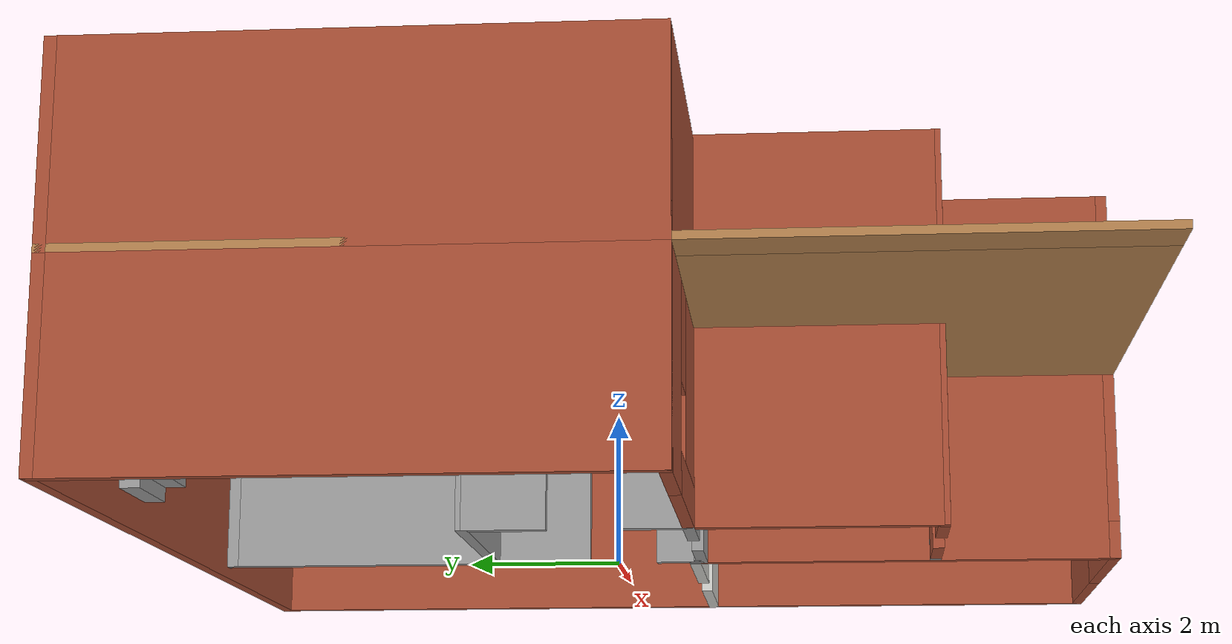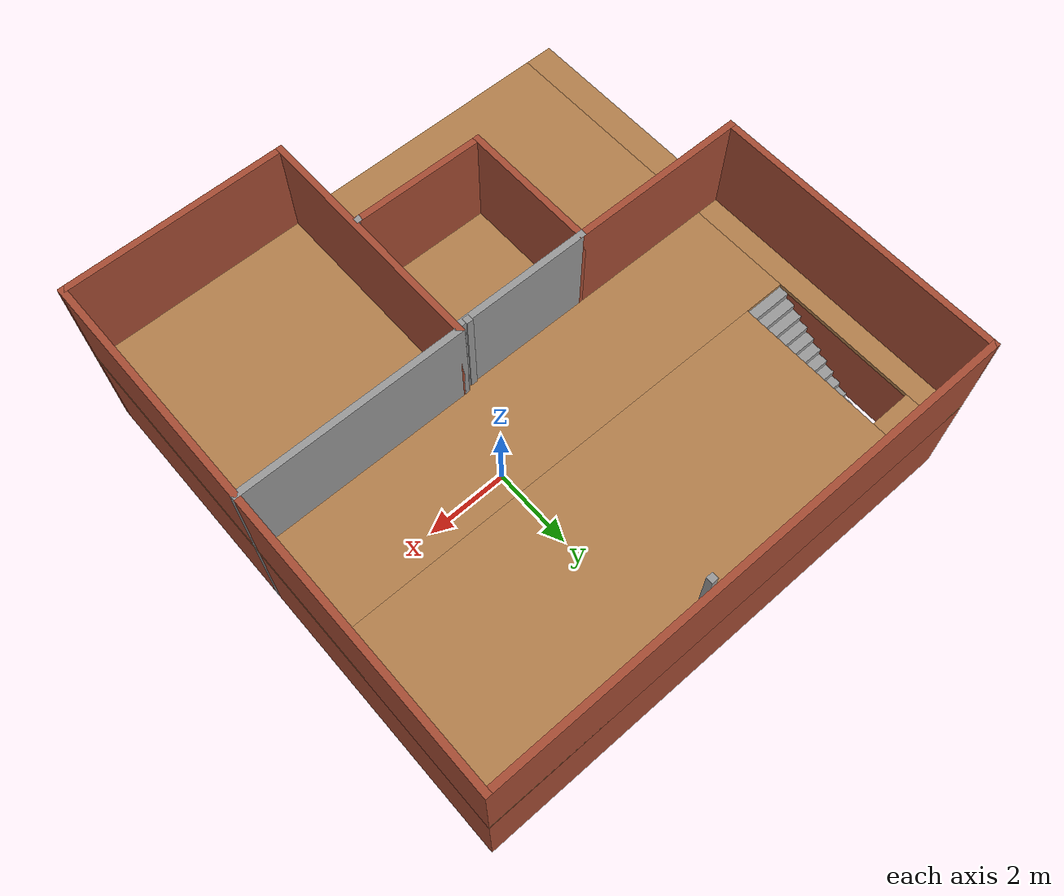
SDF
<?xml version='1.0'?>
<sdf version='1.6'>
  <model name='Random_building'>
    <pose frame=''>-1.00549 -0.452201 0 0 -0 0</pose>
    <link name='Floor_0'>
      <pose frame=''>-0 0 2.5 0 -0 0</pose>
      <visual name='Floor_0_Visual_0'>
        <pose frame=''>-5.91334 0 0.05 0 -0 0</pose>
        <geometry>
          <box>
            <size>0.67332 12.5 0.1</size>
          </box>
        </geometry>
        <material>
          <script>
            <uri>file://media/materials/scripts/gazebo.material</uri>
            <name>Gazebo/Wood</name>
          </script>
          <ambient>1 1 1 1</ambient>
        </material>
        <meta>
          <layer>1</layer>
        </meta>
      </visual>
      <collision name='Floor_0_Collision_0'>
        <geometry>
          <box>
            <size>0.67332 12.5 0.1</size>
          </box>
        </geometry>
        <pose frame=''>-5.91334 0 0.05 0 -0 0</pose>
      </collision>
      <visual name='Floor_0_Visual_1'>
        <pose frame=''>0.33666 -2.19605 0.05 0 -0 0</pose>
        <geometry>
          <box>
            <size>11.8267 8.1079 0.1</size>
          </box>
        </geometry>
        <material>
          <script>
            <uri>file://media/materials/scripts/gazebo.material</uri>
            <name>Gazebo/Wood</name>
          </script>
          <ambient>1 1 1 1</ambient>
        </material>
        <meta>
          <layer>1</layer>
        </meta>
      </visual>
      <collision name='Floor_0_Collision_1'>
        <geometry>
          <box>
            <size>11.8267 8.1079 0.1</size>
          </box>
        </geometry>
        <pose frame=''>0.33666 -2.19605 0.05 0 -0 0</pose>
      </collision>
      <visual name='Floor_0_Visual_2'>
        <pose frame=''>0.83666 4.05395 0.05 0 -0 0</pose>
        <geometry>
          <box>
            <size>10.8267 4.3921 0.1</size>
          </box>
        </geometry>
        <material>
          <script>
            <uri>file://media/materials/scripts/gazebo.material</uri>
            <name>Gazebo/Wood</name>
          </script>
          <ambient>1 1 1 1</ambient>
        </material>
        <meta>
          <layer>1</layer>
        </meta>
      </visual>
      <collision name='Floor_0_Collision_2'>
        <geometry>
          <box>
            <size>10.8267 4.3921 0.1</size>
          </box>
        </geometry>
        <pose frame=''>0.83666 4.05395 0.05 0 -0 0</pose>
      </collision>
      <visual name='Floor_0_Visual_3'>
        <pose frame=''>-5.07668 5.80395 0.05 0 -0 0</pose>
        <geometry>
          <box>
            <size>1 0.892097 0.1</size>
          </box>
        </geometry>
        <material>
          <script>
            <uri>file://media/materials/scripts/gazebo.material</uri>
            <name>Gazebo/Wood</name>
          </script>
          <ambient>1 1 1 1</ambient>
        </material>
        <meta>
          <layer>1</layer>
        </meta>
      </visual>
      <collision name='Floor_0_Collision_3'>
        <geometry>
          <box>
            <size>1 0.892097 0.1</size>
          </box>
        </geometry>
        <pose frame=''>-5.07668 5.80395 0.05 0 -0 0</pose>
      </collision>
    </link>
    <link name='Stairs_0'>
      <visual name='Stairs_0_Visual_0'>
        <pose frame=''>-5.07668 5.24124 0.083333 0 -0 0</pose>
        <geometry>
          <box>
            <size>1 0.233333 0.166667</size>
          </box>
        </geometry>
        <material>
          <script>
            <uri>file://media/materials/scripts/gazebo.material</uri>
            <name>Gazebo/Grey</name>
          </script>
          <ambient>1 1 1 1</ambient>
        </material>
        <meta>
          <layer>0</layer>
        </meta>
      </visual>
      <collision name='Stairs_0_Collision_0'>
        <geometry>
          <box>
            <size>1 0.233333 0.166667</size>
          </box>
        </geometry>
        <pose frame=''>-5.07668 5.24124 0.083333 0 -0 0</pose>
      </collision>
      <visual name='Stairs_0_Visual_1'>
        <pose frame=''>-5.07668 5.0079 0.25 0 -0 0</pose>
        <geometry>
          <box>
            <size>1 0.233333 0.166667</size>
          </box>
        </geometry>
        <material>
          <script>
            <uri>file://media/materials/scripts/gazebo.material</uri>
            <name>Gazebo/Grey</name>
          </script>
          <ambient>1 1 1 1</ambient>
        </material>
        <meta>
          <layer>0</layer>
        </meta>
      </visual>
      <collision name='Stairs_0_Collision_1'>
        <geometry>
          <box>
            <size>1 0.233333 0.166667</size>
          </box>
        </geometry>
        <pose frame=''>-5.07668 5.0079 0.25 0 -0 0</pose>
      </collision>
      <visual name='Stairs_0_Visual_2'>
        <pose frame=''>-5.07668 4.77457 0.416667 0 -0 0</pose>
        <geometry>
          <box>
            <size>1 0.233333 0.166667</size>
          </box>
        </geometry>
        <material>
          <script>
            <uri>file://media/materials/scripts/gazebo.material</uri>
            <name>Gazebo/Grey</name>
          </script>
          <ambient>1 1 1 1</ambient>
        </material>
        <meta>
          <layer>0</layer>
        </meta>
      </visual>
      <collision name='Stairs_0_Collision_2'>
        <geometry>
          <box>
            <size>1 0.233333 0.166667</size>
          </box>
        </geometry>
        <pose frame=''>-5.07668 4.77457 0.416667 0 -0 0</pose>
      </collision>
      <visual name='Stairs_0_Visual_3'>
        <pose frame=''>-5.07668 4.54124 0.583333 0 -0 0</pose>
        <geometry>
          <box>
            <size>1 0.233333 0.166667</size>
          </box>
        </geometry>
        <material>
          <script>
            <uri>file://media/materials/scripts/gazebo.material</uri>
            <name>Gazebo/Grey</name>
          </script>
          <ambient>1 1 1 1</ambient>
        </material>
        <meta>
          <layer>0</layer>
        </meta>
      </visual>
      <collision name='Stairs_0_Collision_3'>
        <geometry>
          <box>
            <size>1 0.233333 0.166667</size>
          </box>
        </geometry>
        <pose frame=''>-5.07668 4.54124 0.583333 0 -0 0</pose>
      </collision>
      <visual name='Stairs_0_Visual_4'>
        <pose frame=''>-5.07668 4.3079 0.75 0 -0 0</pose>
        <geometry>
          <box>
            <size>1 0.233333 0.166667</size>
          </box>
        </geometry>
        <material>
          <script>
            <uri>file://media/materials/scripts/gazebo.material</uri>
            <name>Gazebo/Grey</name>
          </script>
          <ambient>1 1 1 1</ambient>
        </material>
        <meta>
          <layer>0</layer>
        </meta>
      </visual>
      <collision name='Stairs_0_Collision_4'>
        <geometry>
          <box>
            <size>1 0.233333 0.166667</size>
          </box>
        </geometry>
        <pose frame=''>-5.07668 4.3079 0.75 0 -0 0</pose>
      </collision>
      <visual name='Stairs_0_Visual_5'>
        <pose frame=''>-5.07668 4.07457 0.916667 0 -0 0</pose>
        <geometry>
          <box>
            <size>1 0.233333 0.166667</size>
          </box>
        </geometry>
        <material>
          <script>
            <uri>file://media/materials/scripts/gazebo.material</uri>
            <name>Gazebo/Grey</name>
          </script>
          <ambient>1 1 1 1</ambient>
        </material>
        <meta>
          <layer>0</layer>
        </meta>
      </visual>
      <collision name='Stairs_0_Collision_5'>
        <geometry>
          <box>
            <size>1 0.233333 0.166667</size>
          </box>
        </geometry>
        <pose frame=''>-5.07668 4.07457 0.916667 0 -0 0</pose>
      </collision>
      <visual name='Stairs_0_Visual_6'>
        <pose frame=''>-5.07668 3.84124 1.08333 0 -0 0</pose>
        <geometry>
          <box>
            <size>1 0.233333 0.166667</size>
          </box>
        </geometry>
        <material>
          <script>
            <uri>file://media/materials/scripts/gazebo.material</uri>
            <name>Gazebo/Grey</name>
          </script>
          <ambient>1 1 1 1</ambient>
        </material>
        <meta>
          <layer>0</layer>
        </meta>
      </visual>
      <collision name='Stairs_0_Collision_6'>
        <geometry>
          <box>
            <size>1 0.233333 0.166667</size>
          </box>
        </geometry>
        <pose frame=''>-5.07668 3.84124 1.08333 0 -0 0</pose>
      </collision>
      <visual name='Stairs_0_Visual_7'>
        <pose frame=''>-5.07668 3.6079 1.25 0 -0 0</pose>
        <geometry>
          <box>
            <size>1 0.233333 0.166667</size>
          </box>
        </geometry>
        <material>
          <script>
            <uri>file://media/materials/scripts/gazebo.material</uri>
            <name>Gazebo/Grey</name>
          </script>
          <ambient>1 1 1 1</ambient>
        </material>
        <meta>
          <layer>0</layer>
        </meta>
      </visual>
      <collision name='Stairs_0_Collision_7'>
        <geometry>
          <box>
            <size>1 0.233333 0.166667</size>
          </box>
        </geometry>
        <pose frame=''>-5.07668 3.6079 1.25 0 -0 0</pose>
      </collision>
      <visual name='Stairs_0_Visual_8'>
        <pose frame=''>-5.07668 3.37457 1.41667 0 -0 0</pose>
        <geometry>
          <box>
            <size>1 0.233333 0.166667</size>
          </box>
        </geometry>
        <material>
          <script>
            <uri>file://media/materials/scripts/gazebo.material</uri>
            <name>Gazebo/Grey</name>
          </script>
          <ambient>1 1 1 1</ambient>
        </material>
        <meta>
          <layer>0</layer>
        </meta>
      </visual>
      <collision name='Stairs_0_Collision_8'>
        <geometry>
          <box>
            <size>1 0.233333 0.166667</size>
          </box>
        </geometry>
        <pose frame=''>-5.07668 3.37457 1.41667 0 -0 0</pose>
      </collision>
      <visual name='Stairs_0_Visual_9'>
        <pose frame=''>-5.07668 3.14124 1.58333 0 -0 0</pose>
        <geometry>
          <box>
            <size>1 0.233333 0.166667</size>
          </box>
        </geometry>
        <material>
          <script>
            <uri>file://media/materials/scripts/gazebo.material</uri>
            <name>Gazebo/Grey</name>
          </script>
          <ambient>1 1 1 1</ambient>
        </material>
        <meta>
          <layer>0</layer>
        </meta>
      </visual>
      <collision name='Stairs_0_Collision_9'>
        <geometry>
          <box>
            <size>1 0.233333 0.166667</size>
          </box>
        </geometry>
        <pose frame=''>-5.07668 3.14124 1.58333 0 -0 0</pose>
      </collision>
      <visual name='Stairs_0_Visual_10'>
        <pose frame=''>-5.07668 2.9079 1.75 0 -0 0</pose>
        <geometry>
          <box>
            <size>1 0.233333 0.166667</size>
          </box>
        </geometry>
        <material>
          <script>
            <uri>file://media/materials/scripts/gazebo.material</uri>
            <name>Gazebo/Grey</name>
          </script>
          <ambient>1 1 1 1</ambient>
        </material>
        <meta>
          <layer>0</layer>
        </meta>
      </visual>
      <collision name='Stairs_0_Collision_10'>
        <geometry>
          <box>
            <size>1 0.233333 0.166667</size>
          </box>
        </geometry>
        <pose frame=''>-5.07668 2.9079 1.75 0 -0 0</pose>
      </collision>
      <visual name='Stairs_0_Visual_11'>
        <pose frame=''>-5.07668 2.67457 1.91667 0 -0 0</pose>
        <geometry>
          <box>
            <size>1 0.233333 0.166667</size>
          </box>
        </geometry>
        <material>
          <script>
            <uri>file://media/materials/scripts/gazebo.material</uri>
            <name>Gazebo/Grey</name>
          </script>
          <ambient>1 1 1 1</ambient>
        </material>
        <meta>
          <layer>0</layer>
        </meta>
      </visual>
      <collision name='Stairs_0_Collision_11'>
        <geometry>
          <box>
            <size>1 0.233333 0.166667</size>
          </box>
        </geometry>
        <pose frame=''>-5.07668 2.67457 1.91667 0 -0 0</pose>
      </collision>
      <visual name='Stairs_0_Visual_12'>
        <pose frame=''>-5.07668 2.44124 2.08333 0 -0 0</pose>
        <geometry>
          <box>
            <size>1 0.233333 0.166667</size>
          </box>
        </geometry>
        <material>
          <script>
            <uri>file://media/materials/scripts/gazebo.material</uri>
            <name>Gazebo/Grey</name>
          </script>
          <ambient>1 1 1 1</ambient>
        </material>
        <meta>
          <layer>0</layer>
        </meta>
      </visual>
      <collision name='Stairs_0_Collision_12'>
        <geometry>
          <box>
            <size>1 0.233333 0.166667</size>
          </box>
        </geometry>
        <pose frame=''>-5.07668 2.44124 2.08333 0 -0 0</pose>
      </collision>
      <visual name='Stairs_0_Visual_13'>
        <pose frame=''>-5.07668 2.2079 2.25 0 -0 0</pose>
        <geometry>
          <box>
            <size>1 0.233333 0.166667</size>
          </box>
        </geometry>
        <material>
          <script>
            <uri>file://media/materials/scripts/gazebo.material</uri>
            <name>Gazebo/Grey</name>
          </script>
          <ambient>1 1 1 1</ambient>
        </material>
        <meta>
          <layer>0</layer>
        </meta>
      </visual>
      <collision name='Stairs_0_Collision_13'>
        <geometry>
          <box>
            <size>1 0.233333 0.166667</size>
          </box>
        </geometry>
        <pose frame=''>-5.07668 2.2079 2.25 0 -0 0</pose>
      </collision>
      <visual name='Stairs_0_Visual_14'>
        <pose frame=''>-5.07668 1.97457 2.41667 0 -0 0</pose>
        <geometry>
          <box>
            <size>1 0.233333 0.166667</size>
          </box>
        </geometry>
        <material>
          <script>
            <uri>file://media/materials/scripts/gazebo.material</uri>
            <name>Gazebo/Grey</name>
          </script>
          <ambient>1 1 1 1</ambient>
        </material>
        <meta>
          <layer>0</layer>
        </meta>
      </visual>
      <collision name='Stairs_0_Collision_14'>
        <geometry>
          <box>
            <size>1 0.233333 0.166667</size>
          </box>
        </geometry>
        <pose frame=''>-5.07668 1.97457 2.41667 0 -0 0</pose>
      </collision>
    </link>
    <link name='Wall_1'>
      <collision name='Wall_1_Collision'>
        <geometry>
          <box>
            <size>12.5 0.15 2.5</size>
          </box>
        </geometry>
        <pose frame=''>0 0 1.25 0 -0 0</pose>
      </collision>
      <visual name='Wall_1_Visual'>
        <pose frame=''>0 0 1.25 0 -0 0</pose>
        <geometry>
          <box>
            <size>12.5 0.15 2.5</size>
          </box>
        </geometry>
        <material>
          <script>
            <uri>file://media/materials/scripts/gazebo.material</uri>
            <name>Gazebo/Bricks</name>
          </script>
          <ambient>1 1 1 1</ambient>
        </material>
        <meta>
          <layer>0</layer>
        </meta>
      </visual>
      <pose frame=''>-0 6.175 0 0 -0 0</pose>
    </link>
    <link name='Wall_11'>
      <collision name='Wall_11_Collision'>
        <geometry>
          <box>
            <size>0.15 0.15 2.5</size>
          </box>
        </geometry>
        <pose frame=''>0 0 1.25 0 -0 0</pose>
      </collision>
      <visual name='Wall_11_Visual'>
        <pose frame=''>0 0 1.25 0 -0 0</pose>
        <geometry>
          <box>
            <size>0.15 0.15 2.5</size>
          </box>
        </geometry>
        <material>
          <script>
            <uri>file://media/materials/scripts/gazebo.material</uri>
            <name>Gazebo/Grey</name>
          </script>
          <ambient>1 1 1 1</ambient>
        </material>
        <meta>
          <layer>0</layer>
        </meta>
      </visual>
      <pose frame=''>0.818599 -0.6484 0 0 -0 0</pose>
    </link>
    <link name='Wall_16'>
      <collision name='Wall_16_Collision'>
        <geometry>
          <box>
            <size>0.15 0.15 2.5</size>
          </box>
        </geometry>
        <pose frame=''>0 0 1.25 0 -0 0</pose>
      </collision>
      <visual name='Wall_16_Visual'>
        <pose frame=''>0 0 1.25 0 -0 0</pose>
        <geometry>
          <box>
            <size>0.15 0.15 2.5</size>
          </box>
        </geometry>
        <material>
          <script>
            <uri>file://media/materials/scripts/gazebo.material</uri>
            <name>Gazebo/Grey</name>
          </script>
          <ambient>1 1 1 1</ambient>
        </material>
        <meta>
          <layer>0</layer>
        </meta>
      </visual>
      <pose frame=''>0.960117 -3.79593 0 0 -0 0</pose>
    </link>
    <link name='Wall_2'>
      <collision name='Wall_2_Collision'>
        <geometry>
          <box>
            <size>12.5 0.15 2.5</size>
          </box>
        </geometry>
        <pose frame=''>0 0 1.25 0 -0 0</pose>
      </collision>
      <visual name='Wall_2_Visual'>
        <pose frame=''>0 0 1.25 0 -0 0</pose>
        <geometry>
          <box>
            <size>12.5 0.15 2.5</size>
          </box>
        </geometry>
        <material>
          <script>
            <uri>file://media/materials/scripts/gazebo.material</uri>
            <name>Gazebo/Bricks</name>
          </script>
          <ambient>1 1 1 1</ambient>
        </material>
        <meta>
          <layer>0</layer>
        </meta>
      </visual>
      <pose frame=''>6.175 0 0 0 -0 -1.5708</pose>
    </link>
    <link name='Wall_21'>
      <collision name='Wall_21_Collision'>
        <geometry>
          <box>
            <size>0.15 0.15 2.5</size>
          </box>
        </geometry>
        <pose frame=''>0 0 1.25 0 -0 0</pose>
      </collision>
      <visual name='Wall_21_Visual'>
        <pose frame=''>0 0 1.25 0 -0 0</pose>
        <geometry>
          <box>
            <size>0.15 0.15 2.5</size>
          </box>
        </geometry>
        <material>
          <script>
            <uri>file://media/materials/scripts/gazebo.material</uri>
            <name>Gazebo/Grey</name>
          </script>
          <ambient>1 1 1 1</ambient>
        </material>
        <meta>
          <layer>0</layer>
        </meta>
      </visual>
      <pose frame=''>0.99096 5.73411 0 0 -0 0</pose>
    </link>
    <link name='Wall_27'>
      <collision name='Wall_27_Collision'>
        <geometry>
          <box>
            <size>0.15 0.15 2.5</size>
          </box>
        </geometry>
        <pose frame=''>0 0 1.25 0 -0 0</pose>
      </collision>
      <visual name='Wall_27_Visual'>
        <pose frame=''>0 0 1.25 0 -0 0</pose>
        <geometry>
          <box>
            <size>0.15 0.15 2.5</size>
          </box>
        </geometry>
        <material>
          <script>
            <uri>file://media/materials/scripts/gazebo.material</uri>
            <name>Gazebo/Grey</name>
          </script>
          <ambient>1 1 1 1</ambient>
        </material>
        <meta>
          <layer>0</layer>
        </meta>
      </visual>
      <pose frame=''>0.818599 -0.6484 0 0 -0 0</pose>
    </link>
    <link name='Wall_29'>
      <collision name='Wall_29_Collision'>
        <geometry>
          <box>
            <size>7 0.15 2.5</size>
          </box>
        </geometry>
        <pose frame=''>0 0 1.25 0 -0 0</pose>
      </collision>
      <visual name='Wall_29_Visual'>
        <pose frame=''>0 0 1.25 0 -0 0</pose>
        <geometry>
          <box>
            <size>7 0.15 2.5</size>
          </box>
        </geometry>
        <material>
          <script>
            <uri>file://media/materials/scripts/gazebo.material</uri>
            <name>Gazebo/Bricks</name>
          </script>
          <ambient>1 1 1 1</ambient>
        </material>
        <meta>
          <layer>0</layer>
        </meta>
      </visual>
      <pose frame=''>-6.175 2.75 0 0 -0 -1.5708</pose>
    </link>
    <link name='Wall_3'>
      <pose frame=''>3.625 -6.175 0 0 -0 3.14159</pose>
      <visual name='Wall_3_Visual_0'>
        <pose frame=''>-1.32464 0 1.25 0 -0 0</pose>
        <geometry>
          <box>
            <size>2.60073 0.15 2.5</size>
          </box>
        </geometry>
        <material>
          <script>
            <uri>file://media/materials/scripts/gazebo.material</uri>
            <name>Gazebo/Bricks</name>
          </script>
          <ambient>1 1 1 1</ambient>
        </material>
        <meta>
          <layer>0</layer>
        </meta>
      </visual>
      <collision name='Wall_3_Collision_0'>
        <geometry>
          <box>
            <size>2.60073 0.15 2.5</size>
          </box>
        </geometry>
        <pose frame=''>-1.32464 0 1.25 0 -0 0</pose>
      </collision>
      <visual name='Wall_3_Visual_1'>
        <pose frame=''>1.30036 0 0.25 0 -0 0</pose>
        <geometry>
          <box>
            <size>2.64927 0.15 0.5</size>
          </box>
        </geometry>
        <material>
          <script>
            <uri>file://media/materials/scripts/gazebo.material</uri>
            <name>Gazebo/Bricks</name>
          </script>
          <ambient>1 1 1 1</ambient>
        </material>
        <meta>
          <layer>0</layer>
        </meta>
      </visual>
      <collision name='Wall_3_Collision_1'>
        <geometry>
          <box>
            <size>2.64927 0.15 0.5</size>
          </box>
        </geometry>
        <pose frame=''>1.30036 0 0.25 0 -0 0</pose>
      </collision>
      <visual name='Wall_3_Visual_2'>
        <pose frame=''>1.70036 0 1.5 0 -0 0</pose>
        <geometry>
          <box>
            <size>1.84927 0.15 2</size>
          </box>
        </geometry>
        <material>
          <script>
            <uri>file://media/materials/scripts/gazebo.material</uri>
            <name>Gazebo/Bricks</name>
          </script>
          <ambient>1 1 1 1</ambient>
        </material>
        <meta>
          <layer>0</layer>
        </meta>
      </visual>
      <collision name='Wall_3_Collision_2'>
        <geometry>
          <box>
            <size>1.84927 0.15 2</size>
          </box>
        </geometry>
        <pose frame=''>1.70036 0 1.5 0 -0 0</pose>
      </collision>
      <visual name='Wall_3_Visual_3'>
        <pose frame=''>0.375726 0 1.9 0 -0 0</pose>
        <geometry>
          <box>
            <size>0.8 0.15 1.2</size>
          </box>
        </geometry>
        <material>
          <script>
            <uri>file://media/materials/scripts/gazebo.material</uri>
            <name>Gazebo/Bricks</name>
          </script>
          <ambient>1 1 1 1</ambient>
        </material>
        <meta>
          <layer>0</layer>
        </meta>
      </visual>
      <collision name='Wall_3_Collision_3'>
        <geometry>
          <box>
            <size>0.8 0.15 1.2</size>
          </box>
        </geometry>
        <pose frame=''>0.375726 0 1.9 0 -0 0</pose>
      </collision>
    </link>
    <link name='Wall_30'>
      <pose frame=''>-4.125 -0.675 0 0 -0 0</pose>
      <visual name='Wall_30_Visual_0'>
        <pose frame=''>-1.30491 0 1.25 0 -0 0</pose>
        <geometry>
          <box>
            <size>1.64017 0.15 2.5</size>
          </box>
        </geometry>
        <material>
          <script>
            <uri>file://media/materials/scripts/gazebo.material</uri>
            <name>Gazebo/Bricks</name>
          </script>
          <ambient>1 1 1 1</ambient>
        </material>
        <meta>
          <layer>0</layer>
        </meta>
      </visual>
      <collision name='Wall_30_Collision_0'>
        <geometry>
          <box>
            <size>1.64017 0.15 2.5</size>
          </box>
        </geometry>
        <pose frame=''>-1.30491 0 1.25 0 -0 0</pose>
      </collision>
      <visual name='Wall_30_Visual_1'>
        <pose frame=''>0.820086 0 0.25 0 -0 0</pose>
        <geometry>
          <box>
            <size>2.60983 0.15 0.5</size>
          </box>
        </geometry>
        <material>
          <script>
            <uri>file://media/materials/scripts/gazebo.material</uri>
            <name>Gazebo/Bricks</name>
          </script>
          <ambient>1 1 1 1</ambient>
        </material>
        <meta>
          <layer>0</layer>
        </meta>
      </visual>
      <collision name='Wall_30_Collision_1'>
        <geometry>
          <box>
            <size>2.60983 0.15 0.5</size>
          </box>
        </geometry>
        <pose frame=''>0.820086 0 0.25 0 -0 0</pose>
      </collision>
      <visual name='Wall_30_Visual_2'>
        <pose frame=''>1.22009 0 1.5 0 -0 0</pose>
        <geometry>
          <box>
            <size>1.80983 0.15 2</size>
          </box>
        </geometry>
        <material>
          <script>
            <uri>file://media/materials/scripts/gazebo.material</uri>
            <name>Gazebo/Bricks</name>
          </script>
          <ambient>1 1 1 1</ambient>
        </material>
        <meta>
          <layer>0</layer>
        </meta>
      </visual>
      <collision name='Wall_30_Collision_2'>
        <geometry>
          <box>
            <size>1.80983 0.15 2</size>
          </box>
        </geometry>
        <pose frame=''>1.22009 0 1.5 0 -0 0</pose>
      </collision>
      <visual name='Wall_30_Visual_3'>
        <pose frame=''>-0.084828 0 1.9 0 -0 0</pose>
        <geometry>
          <box>
            <size>0.8 0.15 1.2</size>
          </box>
        </geometry>
        <material>
          <script>
            <uri>file://media/materials/scripts/gazebo.material</uri>
            <name>Gazebo/Bricks</name>
          </script>
          <ambient>1 1 1 1</ambient>
        </material>
        <meta>
          <layer>0</layer>
        </meta>
      </visual>
      <collision name='Wall_30_Collision_3'>
        <geometry>
          <box>
            <size>0.8 0.15 1.2</size>
          </box>
        </geometry>
        <pose frame=''>-0.084828 0 1.9 0 -0 0</pose>
      </collision>
    </link>
    <link name='Wall_31'>
      <collision name='Wall_31_Collision'>
        <geometry>
          <box>
            <size>3.25 0.15 2.5</size>
          </box>
        </geometry>
        <pose frame=''>0 0 1.25 0 -0 0</pose>
      </collision>
      <visual name='Wall_31_Visual'>
        <pose frame=''>0 0 1.25 0 -0 0</pose>
        <geometry>
          <box>
            <size>3.25 0.15 2.5</size>
          </box>
        </geometry>
        <material>
          <script>
            <uri>file://media/materials/scripts/gazebo.material</uri>
            <name>Gazebo/Bricks</name>
          </script>
          <ambient>1 1 1 1</ambient>
        </material>
        <meta>
          <layer>0</layer>
        </meta>
      </visual>
      <pose frame=''>-2.075 -2.225 0 0 -0 -1.5708</pose>
    </link>
    <link name='Wall_32'>
      <pose frame=''>-0.557441 -3.78546 0 0 -0 -0.006895</pose>
      <visual name='Wall_32_Visual_0'>
        <pose frame=''>-1.04689 0 1.25 0 -0 0</pose>
        <geometry>
          <box>
            <size>1.09142 0.15 2.5</size>
          </box>
        </geometry>
        <material>
          <script>
            <uri>file://media/materials/scripts/gazebo.material</uri>
            <name>Gazebo/Bricks</name>
          </script>
          <ambient>1 1 1 1</ambient>
        </material>
        <meta>
          <layer>0</layer>
        </meta>
      </visual>
      <collision name='Wall_32_Collision_0'>
        <geometry>
          <box>
            <size>1.09142 0.15 2.5</size>
          </box>
        </geometry>
        <pose frame=''>-1.04689 0 1.25 0 -0 0</pose>
      </collision>
      <visual name='Wall_32_Visual_1'>
        <pose frame=''>0.99571 0 1.25 0 -0 0</pose>
        <geometry>
          <box>
            <size>1.19377 0.15 2.5</size>
          </box>
        </geometry>
        <material>
          <script>
            <uri>file://media/materials/scripts/gazebo.material</uri>
            <name>Gazebo/Bricks</name>
          </script>
          <ambient>1 1 1 1</ambient>
        </material>
        <meta>
          <layer>0</layer>
        </meta>
      </visual>
      <collision name='Wall_32_Collision_1'>
        <geometry>
          <box>
            <size>1.19377 0.15 2.5</size>
          </box>
        </geometry>
        <pose frame=''>0.99571 0 1.25 0 -0 0</pose>
      </collision>
      <visual name='Wall_32_Visual_2'>
        <pose frame=''>-0.051176 0 2.25 0 -0 0</pose>
        <geometry>
          <box>
            <size>0.9 0.15 0.5</size>
          </box>
        </geometry>
        <material>
          <script>
            <uri>file://media/materials/scripts/gazebo.material</uri>
            <name>Gazebo/Bricks</name>
          </script>
          <ambient>1 1 1 1</ambient>
        </material>
        <meta>
          <layer>0</layer>
        </meta>
      </visual>
      <collision name='Wall_32_Collision_2'>
        <geometry>
          <box>
            <size>0.9 0.15 0.5</size>
          </box>
        </geometry>
        <pose frame=''>-0.051176 0 2.25 0 -0 0</pose>
      </collision>
    </link>
    <link name='Wall_33'>
      <collision name='Wall_33_Collision'>
        <geometry>
          <box>
            <size>0.15 0.15 2.5</size>
          </box>
        </geometry>
        <pose frame=''>0 0 1.25 0 -0 0</pose>
      </collision>
      <visual name='Wall_33_Visual'>
        <pose frame=''>0 0 1.25 0 -0 0</pose>
        <geometry>
          <box>
            <size>0.15 0.15 2.5</size>
          </box>
        </geometry>
        <material>
          <script>
            <uri>file://media/materials/scripts/gazebo.material</uri>
            <name>Gazebo/Grey</name>
          </script>
          <ambient>1 1 1 1</ambient>
        </material>
        <meta>
          <layer>0</layer>
        </meta>
      </visual>
      <pose frame=''>0.960117 -3.79593 0 0 -0 0</pose>
    </link>
    <link name='Wall_39'>
      <collision name='Wall_39_Collision'>
        <geometry>
          <box>
            <size>3 0.15 2.5</size>
          </box>
        </geometry>
        <pose frame=''>0 0 1.25 0 -0 0</pose>
      </collision>
      <visual name='Wall_39_Visual'>
        <pose frame=''>0 0 1.25 0 -0 0</pose>
        <geometry>
          <box>
            <size>3 0.15 2.5</size>
          </box>
        </geometry>
        <material>
          <script>
            <uri>file://media/materials/scripts/gazebo.material</uri>
            <name>Gazebo/Grey</name>
          </script>
          <ambient>1 1 1 1</ambient>
        </material>
        <meta>
          <layer>0</layer>
        </meta>
      </visual>
      <pose frame=''>-0.648863 2.12137 0 0 -0 3.14159</pose>
    </link>
    <link name='Wall_4'>
      <collision name='Wall_4_Collision'>
        <geometry>
          <box>
            <size>5.75 0.15 2.5</size>
          </box>
        </geometry>
        <pose frame=''>0 0 1.25 0 -0 0</pose>
      </collision>
      <visual name='Wall_4_Visual'>
        <pose frame=''>0 0 1.25 0 -0 0</pose>
        <geometry>
          <box>
            <size>5.75 0.15 2.5</size>
          </box>
        </geometry>
        <material>
          <script>
            <uri>file://media/materials/scripts/gazebo.material</uri>
            <name>Gazebo/Bricks</name>
          </script>
          <ambient>1 1 1 1</ambient>
        </material>
        <meta>
          <layer>0</layer>
        </meta>
      </visual>
      <pose frame=''>1.075 -3.375 0 0 -0 1.5708</pose>
    </link>
    <link name='Wall_40'>
      <pose frame=''>-2.07443 0.723184 0 0 -0 -1.5712</pose>
      <visual name='Wall_40_Visual_0'>
        <pose frame=''>-0.9122 0 1.25 0 -0 0</pose>
        <geometry>
          <box>
            <size>1.12197 0.15 2.5</size>
          </box>
        </geometry>
        <material>
          <script>
            <uri>file://media/materials/scripts/gazebo.material</uri>
            <name>Gazebo/Grey</name>
          </script>
          <ambient>1 1 1 1</ambient>
        </material>
        <meta>
          <layer>0</layer>
        </meta>
      </visual>
      <collision name='Wall_40_Collision_0'>
        <geometry>
          <box>
            <size>1.12197 0.15 2.5</size>
          </box>
        </geometry>
        <pose frame=''>-0.9122 0 1.25 0 -0 0</pose>
      </collision>
      <visual name='Wall_40_Visual_1'>
        <pose frame=''>1.01098 0 1.25 0 -0 0</pose>
        <geometry>
          <box>
            <size>0.924399 0.15 2.5</size>
          </box>
        </geometry>
        <material>
          <script>
            <uri>file://media/materials/scripts/gazebo.material</uri>
            <name>Gazebo/Grey</name>
          </script>
          <ambient>1 1 1 1</ambient>
        </material>
        <meta>
          <layer>0</layer>
        </meta>
      </visual>
      <collision name='Wall_40_Collision_1'>
        <geometry>
          <box>
            <size>0.924399 0.15 2.5</size>
          </box>
        </geometry>
        <pose frame=''>1.01098 0 1.25 0 -0 0</pose>
      </collision>
      <visual name='Wall_40_Visual_2'>
        <pose frame=''>0.098784 0 2.25 0 -0 0</pose>
        <geometry>
          <box>
            <size>0.9 0.15 0.5</size>
          </box>
        </geometry>
        <material>
          <script>
            <uri>file://media/materials/scripts/gazebo.material</uri>
            <name>Gazebo/Grey</name>
          </script>
          <ambient>1 1 1 1</ambient>
        </material>
        <meta>
          <layer>0</layer>
        </meta>
      </visual>
      <collision name='Wall_40_Collision_2'>
        <geometry>
          <box>
            <size>0.9 0.15 0.5</size>
          </box>
        </geometry>
        <pose frame=''>0.098784 0 2.25 0 -0 0</pose>
      </collision>
    </link>
    <link name='Wall_43'>
      <pose frame=''>-0.514246 -0.674798 0 0 -0 0.00013</pose>
      <visual name='Wall_43_Visual_0'>
        <pose frame=''>-1.08157 0 1.25 0 -0 0</pose>
        <geometry>
          <box>
            <size>1.10837 0.15 2.5</size>
          </box>
        </geometry>
        <material>
          <script>
            <uri>file://media/materials/scripts/gazebo.material</uri>
            <name>Gazebo/Grey</name>
          </script>
          <ambient>1 1 1 1</ambient>
        </material>
        <meta>
          <layer>0</layer>
        </meta>
      </visual>
      <collision name='Wall_43_Collision_0'>
        <geometry>
          <box>
            <size>1.10837 0.15 2.5</size>
          </box>
        </geometry>
        <pose frame=''>-1.08157 0 1.25 0 -0 0</pose>
      </collision>
      <visual name='Wall_43_Visual_1'>
        <pose frame=''>1.00419 0 1.25 0 -0 0</pose>
        <geometry>
          <box>
            <size>1.26313 0.15 2.5</size>
          </box>
        </geometry>
        <material>
          <script>
            <uri>file://media/materials/scripts/gazebo.material</uri>
            <name>Gazebo/Grey</name>
          </script>
          <ambient>1 1 1 1</ambient>
        </material>
        <meta>
          <layer>0</layer>
        </meta>
      </visual>
      <collision name='Wall_43_Collision_1'>
        <geometry>
          <box>
            <size>1.26313 0.15 2.5</size>
          </box>
        </geometry>
        <pose frame=''>1.00419 0 1.25 0 -0 0</pose>
      </collision>
      <visual name='Wall_43_Visual_2'>
        <pose frame=''>-0.077381 0 2.25 0 -0 0</pose>
        <geometry>
          <box>
            <size>0.9 0.15 0.5</size>
          </box>
        </geometry>
        <material>
          <script>
            <uri>file://media/materials/scripts/gazebo.material</uri>
            <name>Gazebo/Grey</name>
          </script>
          <ambient>1 1 1 1</ambient>
        </material>
        <meta>
          <layer>0</layer>
        </meta>
      </visual>
      <collision name='Wall_43_Collision_2'>
        <geometry>
          <box>
            <size>0.9 0.15 0.5</size>
          </box>
        </geometry>
        <pose frame=''>-0.077381 0 2.25 0 -0 0</pose>
      </collision>
    </link>
    <link name='Wall_46'>
      <pose frame=''>0.99096 2.55416 0 0 -0 -1.5708</pose>
      <visual name='Wall_46_Visual_0'>
        <pose frame=''>-0.763502 0 1.25 0 -0 0</pose>
        <geometry>
          <box>
            <size>4.973 0.15 2.5</size>
          </box>
        </geometry>
        <material>
          <script>
            <uri>file://media/materials/scripts/gazebo.material</uri>
            <name>Gazebo/Grey</name>
          </script>
          <ambient>1 1 1 1</ambient>
        </material>
        <meta>
          <layer>0</layer>
        </meta>
      </visual>
      <collision name='Wall_46_Collision_0'>
        <geometry>
          <box>
            <size>4.973 0.15 2.5</size>
          </box>
        </geometry>
        <pose frame=''>-0.763502 0 1.25 0 -0 0</pose>
      </collision>
      <visual name='Wall_46_Visual_1'>
        <pose frame=''>2.9365 0 1.25 0 -0 0</pose>
        <geometry>
          <box>
            <size>0.627004 0.15 2.5</size>
          </box>
        </geometry>
        <material>
          <script>
            <uri>file://media/materials/scripts/gazebo.material</uri>
            <name>Gazebo/Grey</name>
          </script>
          <ambient>1 1 1 1</ambient>
        </material>
        <meta>
          <layer>0</layer>
        </meta>
      </visual>
      <collision name='Wall_46_Collision_1'>
        <geometry>
          <box>
            <size>0.627004 0.15 2.5</size>
          </box>
        </geometry>
        <pose frame=''>2.9365 0 1.25 0 -0 0</pose>
      </collision>
      <visual name='Wall_46_Visual_2'>
        <pose frame=''>2.173 0 2.25 0 -0 0</pose>
        <geometry>
          <box>
            <size>0.9 0.15 0.5</size>
          </box>
        </geometry>
        <material>
          <script>
            <uri>file://media/materials/scripts/gazebo.material</uri>
            <name>Gazebo/Grey</name>
          </script>
          <ambient>1 1 1 1</ambient>
        </material>
        <meta>
          <layer>0</layer>
        </meta>
      </visual>
      <collision name='Wall_46_Collision_2'>
        <geometry>
          <box>
            <size>0.9 0.15 0.5</size>
          </box>
        </geometry>
        <pose frame=''>2.173 0 2.25 0 -0 0</pose>
      </collision>
    </link>
    <link name='Wall_49'>
      <collision name='Wall_49_Collision'>
        <geometry>
          <box>
            <size>0.15 0.15 2.5</size>
          </box>
        </geometry>
        <pose frame=''>0 0 1.25 0 -0 0</pose>
      </collision>
      <visual name='Wall_49_Visual'>
        <pose frame=''>0 0 1.25 0 -0 0</pose>
        <geometry>
          <box>
            <size>0.15 0.15 2.5</size>
          </box>
        </geometry>
        <material>
          <script>
            <uri>file://media/materials/scripts/gazebo.material</uri>
            <name>Gazebo/Grey</name>
          </script>
          <ambient>1 1 1 1</ambient>
        </material>
        <meta>
          <layer>0</layer>
        </meta>
      </visual>
      <pose frame=''>1.075 -0.575 0 0 -0 0</pose>
    </link>
    <link name='Wall_5'>
      <pose frame=''>3.625 -0.575 0 0 -0 0</pose>
      <visual name='Wall_5_Visual_0'>
        <pose frame=''>-1.51573 0 1.25 0 -0 0</pose>
        <geometry>
          <box>
            <size>2.21855 0.15 2.5</size>
          </box>
        </geometry>
        <material>
          <script>
            <uri>file://media/materials/scripts/gazebo.material</uri>
            <name>Gazebo/CeilingTiled</name>
          </script>
          <ambient>1 1 1 1</ambient>
        </material>
        <meta>
          <layer>0</layer>
        </meta>
      </visual>
      <collision name='Wall_5_Collision_0'>
        <geometry>
          <box>
            <size>2.21855 0.15 2.5</size>
          </box>
        </geometry>
        <pose frame=''>-1.51573 0 1.25 0 -0 0</pose>
      </collision>
      <visual name='Wall_5_Visual_1'>
        <pose frame=''>1.55927 0 1.25 0 -0 0</pose>
        <geometry>
          <box>
            <size>2.13145 0.15 2.5</size>
          </box>
        </geometry>
        <material>
          <script>
            <uri>file://media/materials/scripts/gazebo.material</uri>
            <name>Gazebo/CeilingTiled</name>
          </script>
          <ambient>1 1 1 1</ambient>
        </material>
        <meta>
          <layer>0</layer>
        </meta>
      </visual>
      <collision name='Wall_5_Collision_1'>
        <geometry>
          <box>
            <size>2.13145 0.15 2.5</size>
          </box>
        </geometry>
        <pose frame=''>1.55927 0 1.25 0 -0 0</pose>
      </collision>
      <visual name='Wall_5_Visual_2'>
        <pose frame=''>0.043547 0 2.25 0 -0 0</pose>
        <geometry>
          <box>
            <size>0.9 0.15 0.5</size>
          </box>
        </geometry>
        <material>
          <script>
            <uri>file://media/materials/scripts/gazebo.material</uri>
            <name>Gazebo/CeilingTiled</name>
          </script>
          <ambient>1 1 1 1</ambient>
        </material>
        <meta>
          <layer>0</layer>
        </meta>
      </visual>
      <collision name='Wall_5_Collision_2'>
        <geometry>
          <box>
            <size>0.9 0.15 0.5</size>
          </box>
        </geometry>
        <pose frame=''>0.043547 0 2.25 0 -0 0</pose>
      </collision>
    </link>
    <link name='Wall_51'>
      <collision name='Wall_51_Collision'>
        <geometry>
          <box>
            <size>12.5 0.15 2.5</size>
          </box>
        </geometry>
        <pose frame=''>0 0 1.25 0 -0 0</pose>
      </collision>
      <visual name='Wall_51_Visual'>
        <pose frame=''>0 0 1.25 0 -0 0</pose>
        <geometry>
          <box>
            <size>12.5 0.15 2.5</size>
          </box>
        </geometry>
        <material>
          <script>
            <uri>file://media/materials/scripts/gazebo.material</uri>
            <name>Gazebo/Bricks</name>
          </script>
          <ambient>1 1 1 1</ambient>
        </material>
        <meta>
          <layer>1</layer>
        </meta>
      </visual>
      <pose frame=''>-0 6.175 2.5 0 -0 0</pose>
    </link>
    <link name='Wall_52'>
      <collision name='Wall_52_Collision'>
        <geometry>
          <box>
            <size>12.5 0.15 2.5</size>
          </box>
        </geometry>
        <pose frame=''>0 0 1.25 0 -0 0</pose>
      </collision>
      <visual name='Wall_52_Visual'>
        <pose frame=''>0 0 1.25 0 -0 0</pose>
        <geometry>
          <box>
            <size>12.5 0.15 2.5</size>
          </box>
        </geometry>
        <material>
          <script>
            <uri>file://media/materials/scripts/gazebo.material</uri>
            <name>Gazebo/Bricks</name>
          </script>
          <ambient>1 1 1 1</ambient>
        </material>
        <meta>
          <layer>1</layer>
        </meta>
      </visual>
      <pose frame=''>6.175 0 2.5 0 -0 -1.5708</pose>
    </link>
    <link name='Wall_53'>
      <collision name='Wall_53_Collision'>
        <geometry>
          <box>
            <size>5.25 0.15 2.5</size>
          </box>
        </geometry>
        <pose frame=''>0 0 1.25 0 -0 0</pose>
      </collision>
      <visual name='Wall_53_Visual'>
        <pose frame=''>0 0 1.25 0 -0 0</pose>
        <geometry>
          <box>
            <size>5.25 0.15 2.5</size>
          </box>
        </geometry>
        <material>
          <script>
            <uri>file://media/materials/scripts/gazebo.material</uri>
            <name>Gazebo/Bricks</name>
          </script>
          <ambient>1 1 1 1</ambient>
        </material>
        <meta>
          <layer>1</layer>
        </meta>
      </visual>
      <pose frame=''>3.625 -6.175 2.5 0 -0 3.14159</pose>
    </link>
    <link name='Wall_54'>
      <collision name='Wall_54_Collision'>
        <geometry>
          <box>
            <size>5.75 0.15 2.5</size>
          </box>
        </geometry>
        <pose frame=''>0 0 1.25 0 -0 0</pose>
      </collision>
      <visual name='Wall_54_Visual'>
        <pose frame=''>0 0 1.25 0 -0 0</pose>
        <geometry>
          <box>
            <size>5.75 0.15 2.5</size>
          </box>
        </geometry>
        <material>
          <script>
            <uri>file://media/materials/scripts/gazebo.material</uri>
            <name>Gazebo/Bricks</name>
          </script>
          <ambient>1 1 1 1</ambient>
        </material>
        <meta>
          <layer>1</layer>
        </meta>
      </visual>
      <pose frame=''>1.075 -3.375 2.5 0 -0 1.5708</pose>
    </link>
    <link name='Wall_55'>
      <collision name='Wall_55_Collision'>
        <geometry>
          <box>
            <size>5.25 0.15 2.5</size>
          </box>
        </geometry>
        <pose frame=''>0 0 1.25 0 -0 0</pose>
      </collision>
      <visual name='Wall_55_Visual'>
        <pose frame=''>0 0 1.25 0 -0 0</pose>
        <geometry>
          <box>
            <size>5.25 0.15 2.5</size>
          </box>
        </geometry>
        <material>
          <script>
            <uri>file://media/materials/scripts/gazebo.material</uri>
            <name>Gazebo/Grey</name>
          </script>
          <ambient>1 1 1 1</ambient>
        </material>
        <meta>
          <layer>1</layer>
        </meta>
      </visual>
      <pose frame=''>3.625 -0.575 2.5 0 -0 0</pose>
    </link>
    <link name='Wall_56'>
      <collision name='Wall_56_Collision'>
        <geometry>
          <box>
            <size>0.15 0.15 2.5</size>
          </box>
        </geometry>
        <pose frame=''>0 0 1.25 0 -0 0</pose>
      </collision>
      <visual name='Wall_56_Visual'>
        <pose frame=''>0 0 1.25 0 -0 0</pose>
        <geometry>
          <box>
            <size>0.15 0.15 2.5</size>
          </box>
        </geometry>
        <material>
          <script>
            <uri>file://media/materials/scripts/gazebo.material</uri>
            <name>Gazebo/Grey</name>
          </script>
          <ambient>1 1 1 1</ambient>
        </material>
        <meta>
          <layer>1</layer>
        </meta>
      </visual>
      <pose frame=''>6.175 -0.575 2.5 0 -0 0</pose>
    </link>
    <link name='Wall_57'>
      <collision name='Wall_57_Collision'>
        <geometry>
          <box>
            <size>0.15 0.15 2.5</size>
          </box>
        </geometry>
        <pose frame=''>0 0 1.25 0 -0 0</pose>
      </collision>
      <visual name='Wall_57_Visual'>
        <pose frame=''>0 0 1.25 0 -0 0</pose>
        <geometry>
          <box>
            <size>0.15 0.15 2.5</size>
          </box>
        </geometry>
        <material>
          <script>
            <uri>file://media/materials/scripts/gazebo.material</uri>
            <name>Gazebo/Grey</name>
          </script>
          <ambient>1 1 1 1</ambient>
        </material>
        <meta>
          <layer>1</layer>
        </meta>
      </visual>
      <pose frame=''>6.175 -0.575 2.5 0 -0 0</pose>
    </link>
    <link name='Wall_58'>
      <collision name='Wall_58_Collision'>
        <geometry>
          <box>
            <size>0.15 0.15 2.5</size>
          </box>
        </geometry>
        <pose frame=''>0 0 1.25 0 -0 0</pose>
      </collision>
      <visual name='Wall_58_Visual'>
        <pose frame=''>0 0 1.25 0 -0 0</pose>
        <geometry>
          <box>
            <size>0.15 0.15 2.5</size>
          </box>
        </geometry>
        <material>
          <script>
            <uri>file://media/materials/scripts/gazebo.material</uri>
            <name>Gazebo/Grey</name>
          </script>
          <ambient>1 1 1 1</ambient>
        </material>
        <meta>
          <layer>1</layer>
        </meta>
      </visual>
      <pose frame=''>0.818599 -0.6484 2.5 0 -0 0</pose>
    </link>
    <link name='Wall_59'>
      <collision name='Wall_59_Collision'>
        <geometry>
          <box>
            <size>0.15 0.15 2.5</size>
          </box>
        </geometry>
        <pose frame=''>0 0 1.25 0 -0 0</pose>
      </collision>
      <visual name='Wall_59_Visual'>
        <pose frame=''>0 0 1.25 0 -0 0</pose>
        <geometry>
          <box>
            <size>0.15 0.15 2.5</size>
          </box>
        </geometry>
        <material>
          <script>
            <uri>file://media/materials/scripts/gazebo.material</uri>
            <name>Gazebo/Grey</name>
          </script>
          <ambient>1 1 1 1</ambient>
        </material>
        <meta>
          <layer>1</layer>
        </meta>
      </visual>
      <pose frame=''>0.960117 -3.79593 2.5 0 -0 0</pose>
    </link>
    <link name='Wall_6'>
      <collision name='Wall_6_Collision'>
        <geometry>
          <box>
            <size>0.15 0.15 2.5</size>
          </box>
        </geometry>
        <pose frame=''>0 0 1.25 0 -0 0</pose>
      </collision>
      <visual name='Wall_6_Visual'>
        <pose frame=''>0 0 1.25 0 -0 0</pose>
        <geometry>
          <box>
            <size>0.15 0.15 2.5</size>
          </box>
        </geometry>
        <material>
          <script>
            <uri>file://media/materials/scripts/gazebo.material</uri>
            <name>Gazebo/Grey</name>
          </script>
          <ambient>1 1 1 1</ambient>
        </material>
        <meta>
          <layer>0</layer>
        </meta>
      </visual>
      <pose frame=''>6.175 -0.575 0 0 -0 0</pose>
    </link>
    <link name='Wall_60'>
      <collision name='Wall_60_Collision'>
        <geometry>
          <box>
            <size>0.15 0.15 2.5</size>
          </box>
        </geometry>
        <pose frame=''>0 0 1.25 0 -0 0</pose>
      </collision>
      <visual name='Wall_60_Visual'>
        <pose frame=''>0 0 1.25 0 -0 0</pose>
        <geometry>
          <box>
            <size>0.15 0.15 2.5</size>
          </box>
        </geometry>
        <material>
          <script>
            <uri>file://media/materials/scripts/gazebo.material</uri>
            <name>Gazebo/Grey</name>
          </script>
          <ambient>1 1 1 1</ambient>
        </material>
        <meta>
          <layer>1</layer>
        </meta>
      </visual>
      <pose frame=''>0.99096 5.97916 2.5 0 -0 0</pose>
    </link>
    <link name='Wall_61'>
      <collision name='Wall_61_Collision'>
        <geometry>
          <box>
            <size>0.15 0.15 2.5</size>
          </box>
        </geometry>
        <pose frame=''>0 0 1.25 0 -0 0</pose>
      </collision>
      <visual name='Wall_61_Visual'>
        <pose frame=''>0 0 1.25 0 -0 0</pose>
        <geometry>
          <box>
            <size>0.15 0.15 2.5</size>
          </box>
        </geometry>
        <material>
          <script>
            <uri>file://media/materials/scripts/gazebo.material</uri>
            <name>Gazebo/Grey</name>
          </script>
          <ambient>1 1 1 1</ambient>
        </material>
        <meta>
          <layer>1</layer>
        </meta>
      </visual>
      <pose frame=''>0.818599 -0.6484 2.5 0 -0 0</pose>
    </link>
    <link name='Wall_62'>
      <collision name='Wall_62_Collision'>
        <geometry>
          <box>
            <size>7 0.15 2.5</size>
          </box>
        </geometry>
        <pose frame=''>0 0 1.25 0 -0 0</pose>
      </collision>
      <visual name='Wall_62_Visual'>
        <pose frame=''>0 0 1.25 0 -0 0</pose>
        <geometry>
          <box>
            <size>7 0.15 2.5</size>
          </box>
        </geometry>
        <material>
          <script>
            <uri>file://media/materials/scripts/gazebo.material</uri>
            <name>Gazebo/Bricks</name>
          </script>
          <ambient>1 1 1 1</ambient>
        </material>
        <meta>
          <layer>1</layer>
        </meta>
      </visual>
      <pose frame=''>-6.175 2.75 2.5 0 -0 -1.5708</pose>
    </link>
    <link name='Wall_63'>
      <collision name='Wall_63_Collision'>
        <geometry>
          <box>
            <size>4.25 0.15 2.5</size>
          </box>
        </geometry>
        <pose frame=''>0 0 1.25 0 -0 0</pose>
      </collision>
      <visual name='Wall_63_Visual'>
        <pose frame=''>0 0 1.25 0 -0 0</pose>
        <geometry>
          <box>
            <size>4.25 0.15 2.5</size>
          </box>
        </geometry>
        <material>
          <script>
            <uri>file://media/materials/scripts/gazebo.material</uri>
            <name>Gazebo/Bricks</name>
          </script>
          <ambient>1 1 1 1</ambient>
        </material>
        <meta>
          <layer>1</layer>
        </meta>
      </visual>
      <pose frame=''>-4.125 -0.675 2.5 0 -0 0</pose>
    </link>
    <link name='Wall_64'>
      <collision name='Wall_64_Collision'>
        <geometry>
          <box>
            <size>3.25 0.15 2.5</size>
          </box>
        </geometry>
        <pose frame=''>0 0 1.25 0 -0 0</pose>
      </collision>
      <visual name='Wall_64_Visual'>
        <pose frame=''>0 0 1.25 0 -0 0</pose>
        <geometry>
          <box>
            <size>3.25 0.15 2.5</size>
          </box>
        </geometry>
        <material>
          <script>
            <uri>file://media/materials/scripts/gazebo.material</uri>
            <name>Gazebo/Bricks</name>
          </script>
          <ambient>1 1 1 1</ambient>
        </material>
        <meta>
          <layer>1</layer>
        </meta>
      </visual>
      <pose frame=''>-2.075 -2.225 2.5 0 -0 -1.5708</pose>
    </link>
    <link name='Wall_65'>
      <collision name='Wall_65_Collision'>
        <geometry>
          <box>
            <size>3.18519 0.15 2.5</size>
          </box>
        </geometry>
        <pose frame=''>0 0 1.25 0 -0 0</pose>
      </collision>
      <visual name='Wall_65_Visual'>
        <pose frame=''>0 0 1.25 0 -0 0</pose>
        <geometry>
          <box>
            <size>3.18519 0.15 2.5</size>
          </box>
        </geometry>
        <material>
          <script>
            <uri>file://media/materials/scripts/gazebo.material</uri>
            <name>Gazebo/Bricks</name>
          </script>
          <ambient>1 1 1 1</ambient>
        </material>
        <meta>
          <layer>1</layer>
        </meta>
      </visual>
      <pose frame=''>-0.557441 -3.78546 2.5 0 -0 -0.006895</pose>
    </link>
    <link name='Wall_66'>
      <collision name='Wall_66_Collision'>
        <geometry>
          <box>
            <size>0.15 0.15 2.5</size>
          </box>
        </geometry>
        <pose frame=''>0 0 1.25 0 -0 0</pose>
      </collision>
      <visual name='Wall_66_Visual'>
        <pose frame=''>0 0 1.25 0 -0 0</pose>
        <geometry>
          <box>
            <size>0.15 0.15 2.5</size>
          </box>
        </geometry>
        <material>
          <script>
            <uri>file://media/materials/scripts/gazebo.material</uri>
            <name>Gazebo/Grey</name>
          </script>
          <ambient>1 1 1 1</ambient>
        </material>
        <meta>
          <layer>1</layer>
        </meta>
      </visual>
      <pose frame=''>0.960117 -3.79593 2.5 0 -0 0</pose>
    </link>
    <link name='Wall_69'>
      <collision name='Wall_69_Collision'>
        <geometry>
          <box>
            <size>3.27151 0.15 2.5</size>
          </box>
        </geometry>
        <pose frame=''>0 0 1.25 0 -0 0</pose>
      </collision>
      <visual name='Wall_69_Visual'>
        <pose frame=''>0 0 1.25 0 -0 0</pose>
        <geometry>
          <box>
            <size>3.27151 0.15 2.5</size>
          </box>
        </geometry>
        <material>
          <script>
            <uri>file://media/materials/scripts/gazebo.material</uri>
            <name>Gazebo/Grey</name>
          </script>
          <ambient>1 1 1 1</ambient>
        </material>
        <meta>
          <layer>1</layer>
        </meta>
      </visual>
      <pose frame=''>-0.514246 -0.674798 2.5 0 -0 0.00013</pose>
    </link>
    <link name='Wall_7'>
      <collision name='Wall_7_Collision'>
        <geometry>
          <box>
            <size>0.15 0.15 2.5</size>
          </box>
        </geometry>
        <pose frame=''>0 0 1.25 0 -0 0</pose>
      </collision>
      <visual name='Wall_7_Visual'>
        <pose frame=''>0 0 1.25 0 -0 0</pose>
        <geometry>
          <box>
            <size>0.15 0.15 2.5</size>
          </box>
        </geometry>
        <material>
          <script>
            <uri>file://media/materials/scripts/gazebo.material</uri>
            <name>Gazebo/Grey</name>
          </script>
          <ambient>1 1 1 1</ambient>
        </material>
        <meta>
          <layer>0</layer>
        </meta>
      </visual>
      <pose frame=''>6.175 -0.575 0 0 -0 0</pose>
    </link>
    <link name='Wall_71'>
      <collision name='Wall_71_Collision'>
        <geometry>
          <box>
            <size>0.15 0.15 2.5</size>
          </box>
        </geometry>
        <pose frame=''>0 0 1.25 0 -0 0</pose>
      </collision>
      <visual name='Wall_71_Visual'>
        <pose frame=''>0 0 1.25 0 -0 0</pose>
        <geometry>
          <box>
            <size>0.15 0.15 2.5</size>
          </box>
        </geometry>
        <material>
          <script>
            <uri>file://media/materials/scripts/gazebo.material</uri>
            <name>Gazebo/Grey</name>
          </script>
          <ambient>1 1 1 1</ambient>
        </material>
        <meta>
          <layer>1</layer>
        </meta>
      </visual>
      <pose frame=''>1.075 -0.575 2.5 0 -0 0</pose>
    </link>
    <static>1</static>
  </model>
</sdf>
